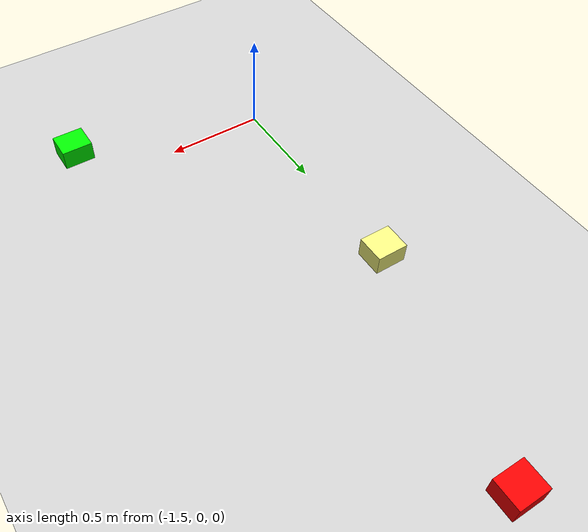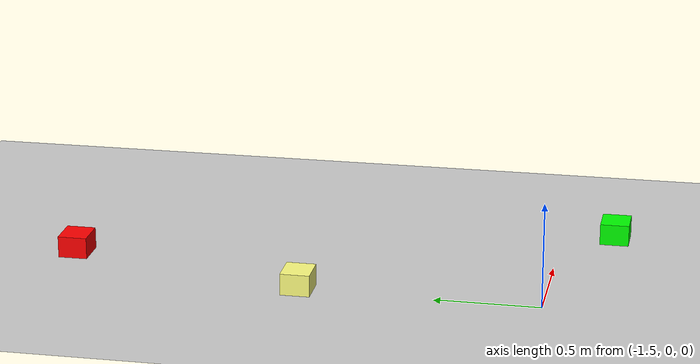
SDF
<sdf version="1.6">
 <world name="default">
  <scene><ambient>0.4 0.4 0.4 1</ambient><background>0.7 0.7 0.7 1</background><shadows>1</shadows></scene>
  <light name="sun" type="directional">
   <pose>0 0 10 0 -0 0</pose>
   <diffuse>0.8 0.8 0.8 1</diffuse>
   <specular>0.1 0.1 0.1 1</specular>
   <attenuation>
    <range>1000</range>
    <constant>0.9</constant>
    <linear>0.01</linear>
    <quadratic>0.001</quadratic>
   </attenuation>
   <direction>-0.5 0.5 -1</direction>
  </light>
  <model name="ground_plane">
   <static>1</static>
   <link name="link">
    <collision name="collision">
     <geometry><plane><normal>0 0 1</normal><size>100 100</size></plane></geometry>
     <surface><friction><ode><mu>100</mu><mu2>50</mu2></ode></friction></surface>
    </collision>
    <visual name="visual">
     <cast_shadows>0</cast_shadows>
     <geometry><plane><normal>0 0 1</normal><size>100 100</size></plane></geometry>
     <material>
      <script><uri>file://media/materials/scripts/gazebo.material</uri><name>Gazebo/Grey</name></script>
     </material>
    </visual>
   </link>
  </model>
  <physics name="default_physics" default="0" type="ode">
   <real_time_update_rate>1000</real_time_update_rate>
   <max_step_size>0.001</max_step_size>
   <real_time_factor>1</real_time_factor>
   <ode>
    <solver>
     <type>quick</type>
     <iters>150</iters>
     <precon_iters>0</precon_iters>
     <sor>1.4</sor>
     <use_dynamic_moi_rescaling>1</use_dynamic_moi_rescaling>
    </solver>
    <constraints>
     <cfm>1e-05</cfm>
     <erp>0.2</erp>
     <contact_max_correcting_vel>2000</contact_max_correcting_vel>
     <contact_surface_layer>0.01</contact_surface_layer>
    </constraints>
   </ode>
  </physics>
  <gravity>0 0 -9.8</gravity>
  <magnetic_field>6e-06 2.3e-05 -4.2e-05</magnetic_field>
  <atmosphere type="adiabatic"/>
  <spherical_coordinates>
   <surface_model>EARTH_WGS84</surface_model>
   <latitude_deg>0</latitude_deg>
   <longitude_deg>0</longitude_deg>
   <elevation>0</elevation>
   <heading_deg>0</heading_deg>
  </spherical_coordinates>
  <model name="unit_box_0">
   <pose>-0.546742 -0.25516 0.051825 0 6e-06 -1e-06</pose>
   <link name="link">
    <inertial>
     <mass>1</mass>
     <inertia>
      <ixx>0.166667</ixx>
      <ixy>0</ixy>
      <ixz>0</ixz>
      <iyy>0.166667</iyy>
      <iyz>0</iyz>
      <izz>0.166667</izz>
     </inertia>
    </inertial>
    <collision name="collision"><geometry><box><size>0.158214 0.139876 0.10365</size></box></geometry></collision>
    <visual name="visual">
     <geometry><box><size>0.158214 0.139876 0.10365</size></box></geometry>
     <material>
      <script><name>Gazebo/Grey</name><uri>file://media/materials/scripts/gazebo.material</uri></script>
      <diffuse>0 1 0 1</diffuse>
     </material>
    </visual>
   </link>
  </model>
  <model name="unit_box_0_clone">
   <pose>-1.49233 1.13819 0.051825 0 -6e-06 -1e-06</pose>
   <link name="link">
    <inertial>
     <mass>1</mass>
     <inertia>
      <ixx>0.166667</ixx>
      <ixy>0</ixy>
      <ixz>0</ixz>
      <iyy>0.166667</iyy>
      <iyz>0</iyz>
      <izz>0.166667</izz>
     </inertia>
    </inertial>
    <collision name="collision"><geometry><box><size>0.158214 0.139876 0.10365</size></box></geometry></collision>
    <visual name="visual">
     <geometry><box><size>0.158214 0.139876 0.10365</size></box></geometry>
     <material>
      <script><name>Gazebo/Grey</name><uri>file://media/materials/scripts/gazebo.material</uri></script>
      <diffuse>1 1 0.5 1</diffuse>
     </material>
    </visual>
   </link>
  </model>
  <model name="unit_box_0_clone_0">
   <pose>-1.21189 2.29215 0.051825 0 -2e-06 -1e-06</pose>
   <link name="link">
    <inertial>
     <mass>1</mass>
     <inertia>
      <ixx>0.166667</ixx>
      <ixy>0</ixy>
      <ixz>0</ixz>
      <iyy>0.166667</iyy>
      <iyz>0</iyz>
      <izz>0.166667</izz>
     </inertia>
    </inertial>
    <collision name="collision"><geometry><box><size>0.158214 0.139876 0.10365</size></box></geometry></collision>
    <visual name="visual">
     <geometry><box><size>0.158214 0.139876 0.10365</size></box></geometry>
     <material>
      <script><name>Gazebo/Grey</name><uri>file://media/materials/scripts/gazebo.material</uri></script>
      <diffuse>1 0 0 1</diffuse>
     </material>
    </visual>
   </link>
  </model>
 </world>
</sdf>
